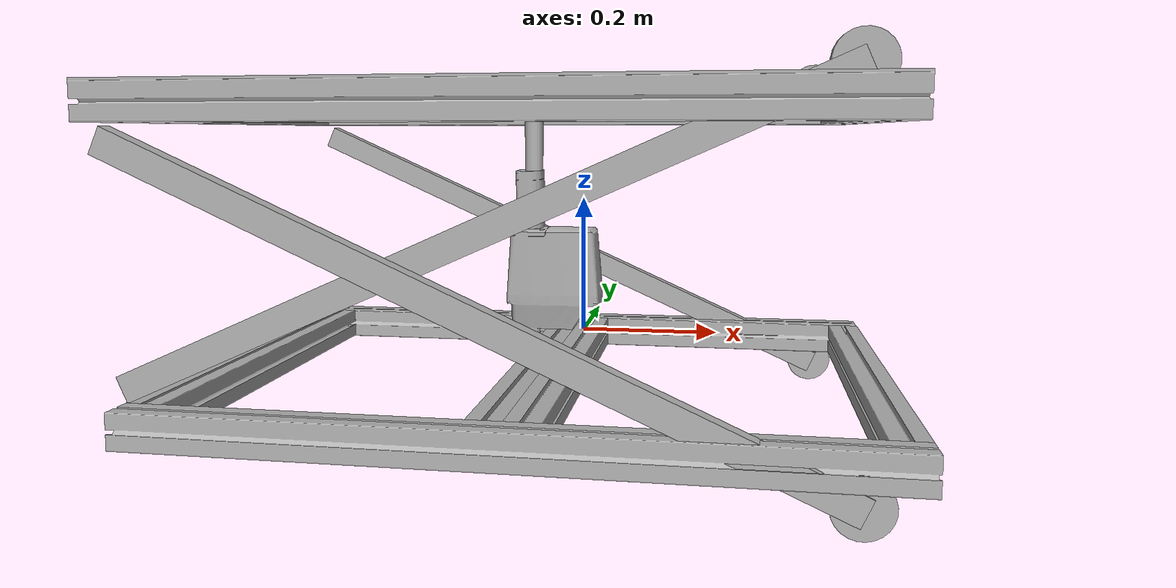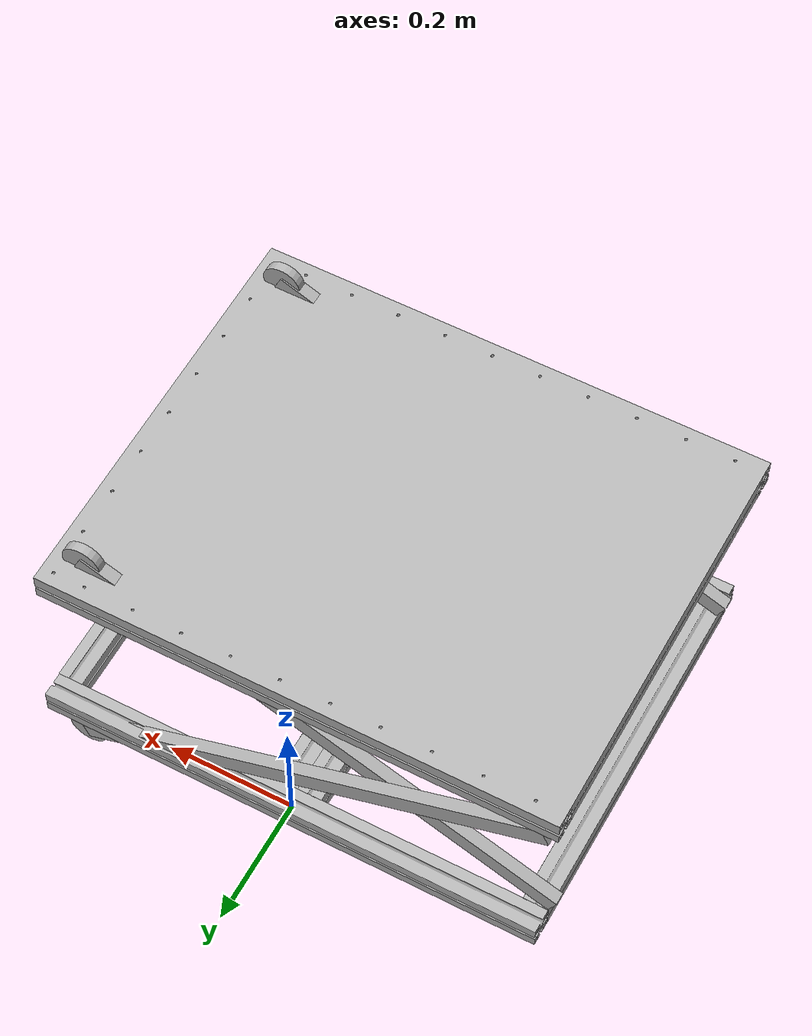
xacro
<?xml version="1.0"?>

<robot name="mybot" xmlns:xacro="http://www.ros.org/wiki/xacro">

  <xacro:macro name="cylinder_inertia" params="m r h">
    <inertial>
      <mass value="${m}"/>
      <inertia ixx="${m*(3*r*r+h*h)/12}" ixy = "0" ixz = "0" iyy="${m*(3*r*r+h*h)/12}" iyz = "0" izz="${m*r*r/2}"/>
    </inertial>
  </xacro:macro>

  <xacro:macro name="box_inertia" params="m w h d">
    <inertial>
      <mass value="${m}"/>
      <inertia ixx="${m / 12.0 * (d*d + h*h)}" ixy="0.0" ixz="0.0" iyy="${m / 12.0 * (w*w + h*h)}" iyz="0.0" izz="${m / 12.0 * (w*w + d*d)}"/>
    </inertial>
  </xacro:macro>

  <xacro:macro name="support_legs_inertia" params="m w h d xyz rpy">
    <inertial>
      <origin xyz="${xyz}" rpy="${rpy}"/>
      <mass value="${m}"/>
      <inertia ixx="${m / 12.0 * (d*d + h*h)}" ixy="0.0" ixz="0.0" iyy="${m / 12.0 * (w*w + h*h)}" iyz="0.0" izz="${m / 12.0 * (w*w + d*d)}"/>
    </inertial>
  </xacro:macro>

  <xacro:macro name="table_inertia" params="m w h d">
    <inertial>
      <origin xyz="0 0 0.2" rpy="1.57 0 0"/>
      <mass value="${m}"/>
      <inertia ixx="${m / 12.0 * (d*d + h*h)}" ixy="0.0" ixz="0.0" iyy="${m / 12.0 * (w*w + h*h)}" iyz="0.0" izz="${m / 12.0 * (w*w + d*d)}"/>
    </inertial>
  </xacro:macro>

    <!--Macro for the side alu profiles-->
    <xacro:macro name="bottom_sides" params="name" >
        <link name="${name}" >

            <xacro:box_inertia m="1.61" w="0.8" h="0.038" d="0.038" />

            <collision name="${name}">
              <origin rpy="0 0 0" xyz="0 0 0"/>
              <geometry>
                <box size="0.8 0.038 0.038" />
              </geometry>
            </collision>

            <visual name="${name}_visual">
              <origin rpy="0 1.57 0" xyz="-0.40 0 0"/>
              <geometry>
                <mesh filename="package://at_robot_simulation/meshes/al_800.stl" scale="0.001 0.001 0.001" />
              </geometry>
              <material name="grey">
                <color rgba="0.7 0.7 0.7 1.0" />
              </material>
            </visual>
        </link>

        <gazebo reference="${name}">
            <material>Gazebo/Grey</material>
        </gazebo>
    </xacro:macro>

    <!--Macro for the bottom front side alu profile-->
    <xacro:macro name="bottom_front_back" params="name" >
        <link name="${name}" >

            <xacro:box_inertia m="1.189" w="0.038" h="0.57" d="0.038" />

            <collision name="${name}">
              <origin rpy="0 0 0" xyz="0 0 0"/>
              <geometry>
                <box size="0.038 0.57 0.038" />
              </geometry>
            </collision>

            <visual name="${name}_visual">
              <origin rpy="0 1.57 1.57" xyz="0 -0.285 0"/>
              <geometry>
                <mesh filename="package://at_robot_simulation/meshes/al_570.stl" scale="0.001 0.001 0.001" />
              </geometry>
              <material name="grey">
                <color rgba="0.7 0.7 0.7 1.0" />
              </material>
            </visual>
        </link>

        <gazebo reference="${name}">
            <material>Gazebo/Grey</material>
        </gazebo>
    </xacro:macro>

    <!--Macro for the supports to the table-->
    <xacro:macro name="support_profiles" params="name orgin_rpy origin_xyz xyz rpy" >
        <link name="${name}" >

            <xacro:support_legs_inertia m="0.212" w="0.810" h="0.02" d="0.030" xyz="${xyz}" rpy="${rpy}"/>

            <collision name="${name}">
              <origin rpy="${orgin_rpy}" xyz="${origin_xyz}"/>
              <geometry>
                <box size="0.810 0.02 0.030" />
              </geometry>
            </collision>

            <visual name="${name}_visual">
              <origin rpy="${orgin_rpy}" xyz="${origin_xyz}"/>
              <geometry>
                <box size="0.810 0.02 0.030" />
              </geometry>
              <material name="grey">
                <color rgba="0.7 0.7 0.7 1.0" />
              </material>
            </visual>
        </link>

        <gazebo reference="${name}">
            <material>Gazebo/Grey</material>
        </gazebo>
    </xacro:macro>

        <!--Macro for the supports to the table-->
    <xacro:macro name="motor_table" params="name orgin_rpy origin_xyz" >
        <link name="${name}" >

            <xacro:box_inertia m="0.711" w="0.106" h="0.031" d="0.233" />

            <collision name="${name}">
              <origin rpy="${orgin_rpy}" xyz="${origin_xyz}"/>
              <geometry>
                <mesh filename="package://at_robot_simulation/meshes/motor_table.dae"  />
              </geometry>
            </collision>

            <visual name="${name}_visual">
              <origin rpy="${orgin_rpy}" xyz="${origin_xyz}"/>
              <geometry>
                <mesh filename="package://at_robot_simulation/meshes/motor_table.dae" />
              </geometry>
              <material name="grey">
                <color rgba="0.7 0.7 0.7 1.0" />
              </material>
            </visual>
        </link>

        <gazebo reference="${name}">
            <material>Gazebo/Black</material>
        </gazebo>
    </xacro:macro>

    <!--Macro push link-->
    <xacro:macro name="push_link" params="name origin_xyz" >
        <link name="${name}" >

            <xacro:cylinder_inertia m="0.01" r="0.011" h="0.25" />

            <collision name="${name}">
              <origin rpy="0 0 0" xyz="${origin_xyz}"/>
              <geometry>
                <cylinder radius="0.011" length="0.25" />
              </geometry>
            </collision>

            <visual name="${name}_visual">
              <origin rpy="0 0 0" xyz="${origin_xyz}"/>
              <geometry>
                <cylinder radius="0.011" length="0.25" />
              </geometry>
              <material name="grey">
                <color rgba="0.7 0.7 0.7 1.0" />
              </material>
            </visual>
        </link>
        <gazebo reference="${name}">
            <material>Gazebo/Grey</material>
        </gazebo>
    </xacro:macro>

    <!--Macro table link-->
    <xacro:macro name="table" params="name origin_xyz" >
        <link name="${name}" >

            <xacro:table_inertia m="1.3" w="0.8" h="0.65" d="0.042" />

            <collision name="${name}">
              <origin rpy="-1.57 0 -1.57" xyz="${origin_xyz}"/>
              <geometry>
                <mesh filename="package://at_robot_simulation/meshes/bord.dae" />
              </geometry>
            </collision>

            <visual name="${name}_visual">
              <origin rpy="-1.57 0 -1.57" xyz="${origin_xyz}"/>
              <geometry>
                <mesh filename="package://at_robot_simulation/meshes/bord.dae" />
              </geometry>
              <material name="grey">
                <color rgba="0.7 0.7 0.7 1.0" />
              </material>
            </visual>
        </link>
        <gazebo reference="${name}">
            <material>Gazebo/Grey</material>
        </gazebo>
    </xacro:macro>

        <!--Macro wheel link-->
    <xacro:macro name="wheels_table" params="name" >
        <link name="${name}" >

            <xacro:cylinder_inertia m="0.041" r="0.03" h="0.015" />

            <collision name="${name}">
              <origin rpy="1.57 0 0" xyz="0 0 0" />
              <geometry>
                <cylinder radius="0.03" length="0.015" />
              </geometry>
            </collision>

            <visual name="${name}">
              <origin rpy="1.57 0 0" xyz="0 0 0" />
              <geometry>
                <cylinder radius="0.03" length="0.015" />
              </geometry>
              <material name="grey">
                <color rgba="0.7 0.7 0.7 1.0" />
              </material>
            </visual>
        </link>

        <gazebo reference="${name}">
            <material>Gazebo/Grey</material>
        </gazebo>
    </xacro:macro>

    <!--Joint to tie the bottom frame together-->
    <xacro:macro name="joint_bottom_table" params="name child parent origin_xyz">
      <joint name="${name}_joint" type="fixed">
        <origin rpy="0 0 0" xyz="${origin_xyz}"/>
        <child link="${child}"/>
        <parent link="${parent}"/>
        <axis rpy="0 0 0" xyz="0 1 0"/>
        <limit effort="10000" velocity="1000"/>
      </joint>
    </xacro:macro>

    <!--Joint for the legs to the table-->
    <xacro:macro name="joint_table_support" params="name child parent origin_xyz orgin_rpy upper lower">
      <joint name="${name}_joint" type="revolute">
        <origin rpy="${orgin_rpy}" xyz="${origin_xyz}"/>
        <child link="${child}"/>
        <parent link="${parent}"/>
        <axis rpy="0 0 0" xyz="0 1 0"/>
        <limit effort="50" upper="${upper}" lower="${lower}" velocity="0.075"/>
      </joint>

      <transmission name="trans_${name}">
            <type>transmission_interface/SimpleTransmission</type>
            <joint name="${name}_joint">
                    <hardwareInterface>hardware_interface/PositionJointInterface</hardwareInterface>
            </joint>
            <actuator name="motor_${name}">
                    <hardwareInterface>hardware_interface/PositionJointInterface</hardwareInterface>
                    <mechanicalReduction>1</mechanicalReduction>
            </actuator>
      </transmission>

    </xacro:macro>

        <!--Joint for the legs to the table-->
    <xacro:macro name="joint_motor_table" params="name child parent origin_xyz orgin_rpy">
      <joint name="${name}_joint" type="fixed">
        <origin rpy="${orgin_rpy}" xyz="${origin_xyz}"/>
        <child link="${child}"/>
        <parent link="${parent}"/>
        <axis rpy="0 0 0" xyz="0 1 0"/>
        <limit effort="1" velocity="0.2"/>
      </joint>
    </xacro:macro>

    <!--Fixed joint for push link-->
     <xacro:macro name="joint_motor_push" params="name child parent origin_xyz">
      <joint name="${name}_joint" type="prismatic">
        <origin rpy="0 0 0" xyz="${origin_xyz}"/>
        <child link="${child}"/>
        <parent link="${parent}"/>
        <axis rpy="0 0 0" xyz="0 0 1"/>
        <limit effort="100" upper="0.15" lower="0.0" velocity="0.05"/>
      </joint>

      <transmission name="trans_${name}">
            <type>transmission_interface/SimpleTransmission</type>
            <joint name="${name}_joint">
                    <hardwareInterface>hardware_interface/PositionJointInterface</hardwareInterface>
            </joint>
            <actuator name="motor_${name}">
                    <hardwareInterface>hardware_interface/PositionJointInterface</hardwareInterface>
                    <mechanicalReduction>1</mechanicalReduction>
            </actuator>
      </transmission>

    </xacro:macro>

    <!--Joint to the top table-->
    <xacro:macro name="joint_top_table" params="name child parent origin_xyz">
      <joint name="${name}_joint" type="fixed">
        <origin rpy="0 0 0" xyz="${origin_xyz}"/>
        <child link="${child}"/>
        <parent link="${parent}"/>
        <axis rpy="0 0 0" xyz="0 0 0"/>
        <limit effort="10000" velocity="1000"/>
      </joint>
    </xacro:macro>

    <!--Joint to connect wheels-->
    <xacro:macro name="joint_table_wheels" params="name child parent origin_xyz">
      <joint name="${name}_joint" type="continuous">
        <origin rpy="0 0 0" xyz="${origin_xyz}"/>
        <child link="${child}"/>
        <parent link="${parent}"/>
        <axis rpy="0 0 0" xyz="0 1 0"/>
        <limit effort="10" velocity="2.0"/>
      </joint>
    </xacro:macro>

    <!--Create alu profiles-->
    <xacro:bottom_sides name="left_side" />
    <xacro:bottom_sides name="right_side" />

    <xacro:bottom_front_back name="front_alu" />
    <xacro:bottom_front_back name="back_alu" />

    <xacro:bottom_front_back name="middle_front_alu" />
    <xacro:bottom_front_back name="middle_back_alu" />

    <xacro:joint_bottom_table name="front_alu" child="front_alu" parent="left_side" origin_xyz="0.381 -0.304 0" />
    <xacro:joint_bottom_table name="back_alu" child="back_alu" parent="left_side" origin_xyz="-0.381 -0.304 0" />
    <xacro:joint_bottom_table name="middle_front_alu" child="middle_front_alu" parent="left_side" origin_xyz="0.019 -0.304 0" />
    <xacro:joint_bottom_table name="middle_back_alu" child="middle_back_alu" parent="left_side" origin_xyz="-0.019 -0.304 0" />
    <xacro:joint_bottom_table name="right_side" child="right_side" parent="front_alu" origin_xyz="-0.381 -0.304 0" />

    <!--Create table legs-->
    <xacro:support_profiles name="left_back_leg" orgin_rpy="0 0 0" origin_xyz="0.4 0 0.038" xyz="0.4 0 0" rpy="0 0 0"/>
    <xacro:support_profiles name="right_back_leg" orgin_rpy="0 0 0" origin_xyz="0.4 0 0.038" xyz="0.4 0 0" rpy="0 0 0"/>

    <xacro:joint_table_support name="left_back_leg" child="left_back_leg" parent="left_side" origin_xyz="-0.385 -0.03 0.0" orgin_rpy="0 0 0" upper="-0.32" lower="-0.52" />
    <xacro:joint_table_support name="right_back_leg" child="right_back_leg" parent="right_side" origin_xyz="-0.385 0.03 0.0" orgin_rpy="0 0 0" upper="-0.32" lower="-0.52" />

    <!--Motor for table  and push-->
    <xacro:motor_table name="only_motor" orgin_rpy="0 0 0" origin_xyz="0 0 0.1" />
    <xacro:push_link name="push_link" origin_xyz="0 0 0.1" />

    <xacro:joint_motor_table name="only_motor" child="only_motor" parent="middle_front_alu" orgin_rpy="0 0 0" origin_xyz="0 0 0" />
    <xacro:joint_motor_push name="push_link" child="push_link" parent="only_motor" origin_xyz="-0.04 0 0.1" />

    <!--Create table and joint-->
    <xacro:table name="table_top" origin_xyz="-0.4 -0.3250 0.2" />
    <xacro:joint_top_table  name="table_top" child="table_top" parent="push_link" origin_xyz="0 0 0.055" />

    <!--Create legs for top table-->
    <xacro:support_profiles name="right_front_leg" orgin_rpy="0 0 0" origin_xyz="0.4 0 0.038" xyz="0.4 0 0" rpy="0 0 0"/>
    <xacro:support_profiles name="left_front_leg" orgin_rpy="0 0 0" origin_xyz="0.4 0 0.038" xyz="0.4 0 0" rpy="0 0 0"/>

    <xacro:joint_table_support name="right_front_leg" child="right_front_leg" parent="table_top" origin_xyz="-0.39 -0.31 0.1" orgin_rpy="0 0 0" upper="0.52" lower="0.32" />
    <xacro:joint_table_support name="left_front_leg" child="left_front_leg" parent="table_top" origin_xyz="-0.39 0.31 0.1" orgin_rpy="0 0 0" upper="0.52" lower="0.32" />

    <!--Create wheels-->
    <xacro:wheels_table name="left_to_bottom_wheel" />
    <xacro:wheels_table name="right_to_bottom_wheel" />
    <xacro:wheels_table name="left_to_top_wheel" />
    <xacro:wheels_table name="right_to_top_wheel" />

    <xacro:joint_table_wheels name="left_to_bottom_wheel" child="left_to_bottom_wheel" parent="left_back_leg" origin_xyz="0.8 0 0.04" />
    <xacro:joint_table_wheels name="right_to_bottom_wheel" child="right_to_bottom_wheel" parent="right_back_leg" origin_xyz="0.8 0 0.04" />
    <xacro:joint_table_wheels name="left_to_top_wheel" child="left_to_top_wheel" parent="left_front_leg" origin_xyz="0.8 0 0.04" />
    <xacro:joint_table_wheels name="right_to_top_wheel" child="right_to_top_wheel" parent="right_front_leg" origin_xyz="0.8 0 0.04" />

</robot>
